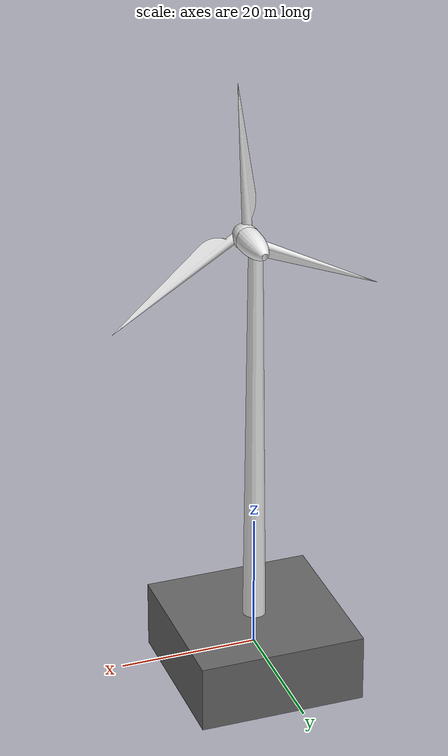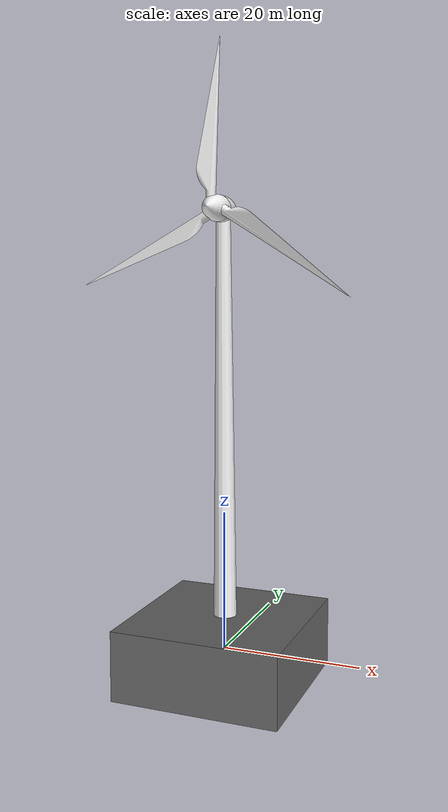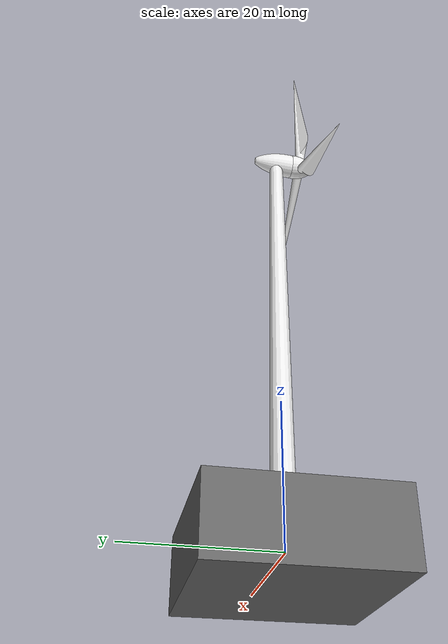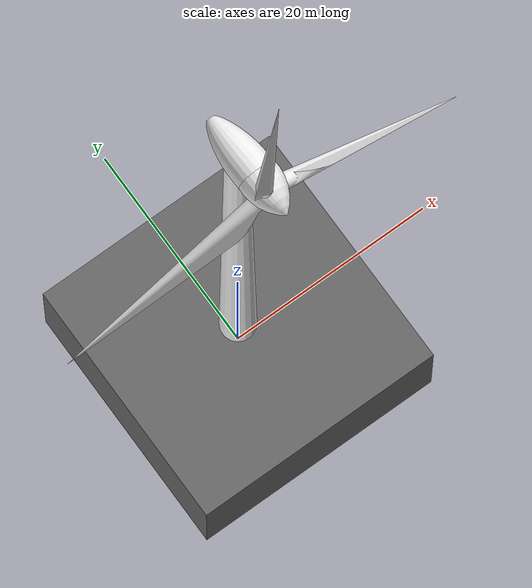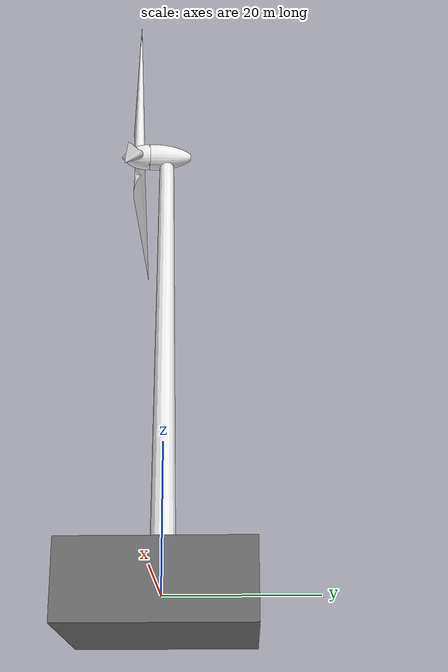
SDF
<?xml version="1.0" ?>
<sdf version="1.8">
  <model name="wind_turbine">
    <link name="turbine_base">
      <pose>0 0 28 0 0 0</pose> <!-- Base positioned at ground level -->
      <visual name="base_visual">
        <geometry>
          <mesh>
            <uri>./meshes/turbine_base.stl</uri>
            <scale>7 7 7</scale> <!-- Scaling to 35% -->
          </mesh>
        </geometry>
        <material>
          <script>
            <name>Gazebo/White</name>
            <uri>file://media/materials/scripts/gazebo.material</uri>
          </script>
        </material>
      </visual>
    </link>

    <!-- Support link (Box) to hold the turbine to the ground -->
    <link name="turbine_support">
      <pose>0 0 0 0 0 0</pose> <!-- Positioned slightly below the base -->
      <inertial>
        <inertia>
          <ixx>88.2</ixx>
          <ixy>0.0</ixy>
          <ixz>0.0</ixz>
          <iyy>88.2</iyy>
          <iyz>0.0</iyz>
          <izz>88.2</izz>
        </inertia>
        <mass>3430000</mass>
      </inertial>

      <collision name="support_collision">
        <geometry>
          <box>
            <size>24.3 24.3 10</size> <!-- Dimensions of the support box -->
          </box>
        </geometry>
        <surface>
          <friction>
            <ode>
              <mu>0.1</mu>
              <mu2>0.1</mu2>
            </ode>
          </friction>
        </surface>
      </collision>
      <visual name="support_visual">
        <geometry>
          <box>
            <size>24.3 24.3 10</size> <!-- Visual representation of the support box -->
          </box>
        </geometry>
        <material>
          <ambient>0.4 0.4 0.4 1</ambient>   <!-- Darkened ambient -->
          <diffuse>0.4 0.4 0.4 1</diffuse>   <!-- Darkened diffuse -->
          <specular>0.3 0.3 0.3 1</specular> <!-- Darkened specular -->
        </material>
      </visual>
    </link>

      <!-- Joint to connect testlink to the base -->
    <joint name="supp_joint" type="fixed">
      <parent>turbine_support</parent>
      <child>turbine_base</child>
    </joint>

    <!-- Dynamic link for the turbine tower and nacelle -->
    <link name="turbine_nacell">
      <pose>0 0 63 0 0 0</pose>

      <visual name="visual">
        <geometry>
          <mesh>
            <uri>./meshes/turbine_nacell.stl</uri>
            <scale>7 7 7</scale> <!-- Scaling to 35% -->
          </mesh>
        </geometry>
        <material>
          <script>
            <name>Gazebo/White</name>
            <uri>file://media/materials/scripts/gazebo.material</uri>
          </script>
        </material>
      </visual>
    </link>

    <!-- Joint to connect testlink to the base -->
    <joint name="base_joint" type="fixed">
      <parent>turbine_base</parent>
      <child>turbine_nacell</child>
    </joint>

     <!-- Support link (Box) to hold the turbine to the ground -->
    <link name="turbine_hub">

      <pose>0.14 -2.38 63.00 1.5708 0 0</pose> <!-- Base positioned at ground level -->
      <inertial>
        <pose>0 0 0.0 0 0 0</pose>
        <mass>9800</mass>
        <density>7800</density>
        <inertia>
          <ixx>408.77</ixx>
          <ixy>0</ixy>
          <ixz>0</ixz>
          <iyy>408.77</iyy>
          <iyz>0</iyz>
          <izz>408.77</izz>
        </inertia>
      </inertial>

      <collision name="hub_collision">
        <density>7850</density>
        <geometry>
          <mesh>
            <uri>./meshes/turbine_hub.stl</uri>
            <scale>0.0182 0.0182 0.0182</scale>
          </mesh>
        </geometry>
      </collision>

      <visual name="hub_visual">
        <geometry>
          <mesh>
            <uri>./meshes/turbine_hub.stl</uri>
            <scale>0.0182 0.0182 0.0182</scale>
          </mesh>
        </geometry>
        <material>
          <script>
            <name>Gazebo/White</name>
            <uri>file://media/materials/scripts/gazebo.material</uri>
          </script>
        </material>
      </visual>
    </link>

    <!-- Support link (Box) to hold the turbine to the ground -->
    <link name="turbine_blade">

      <pose>0.14 -4.13 63 1.5708 0 0</pose>
      <inertial>
        <pose>0 11.9 0 0 0 0</pose>
        <mass>200</mass>
        <inertia>
          <ixx>8515.71</ixx>
          <ixy>0</ixy>
          <ixz>0</ixz>
          <iyy>204.82</iyy>
          <iyz>0</iyz>
          <izz>8614.20</izz>
        </inertia>
      </inertial>

      <collision name="collision">
        <density>7850</density>
        <pose>0.0 0.0 0 0.0 0.0 0.0</pose>
        <geometry>
          <mesh>
            <uri>./meshes/turbine_blade.stl</uri>
            <scale>0.35 0.35 0.35</scale> <!-- Scaling to 35% -->
          </mesh>
        </geometry>
      </collision>

      <visual name="visual">
        <pose>0.0 0.0 0 0.0 0.0 0.0</pose>
        <geometry>
          <mesh>
            <uri>./meshes/turbine_blade.stl</uri>
            <scale>0.35 0.35 0.35</scale> <!-- Scaling to 35% -->
          </mesh>
        </geometry>
        <material>
          <script>
            <name>Gazebo/White</name>
            <uri>file://media/materials/scripts/gazebo.material</uri>
          </script>
        </material>
      </visual>
    </link>

    <joint name="blade_joint" type="fixed">
      <parent>turbine_hub</parent>
      <child>turbine_blade</child>
      <pose>0.0 0.0 0.0 0.0 0.0 0.0</pose>
    </joint>

    <link name="turbine_blade_2">

      <pose>0.14 -4.13 63 1.5708 2.0944 0</pose>
      <inertial>
        <pose>0 11.9 0 0 0 0</pose>
        <mass>200</mass>
        <inertia>
          <ixx>8515.71</ixx>
          <ixy>0</ixy>
          <ixz>0</ixz>
          <iyy>204.82</iyy>
          <iyz>0</iyz>
          <izz>8614.20</izz>
        </inertia>
      </inertial>

      <collision name="collision">
        <density>7850</density>
        <pose>0.0 0.0 0 0.0 0.0 0.0</pose>
        <geometry>
          <mesh>
            <uri>./meshes/turbine_blade.stl</uri>
            <scale>0.35 0.35 0.35</scale> <!-- Scaling to 35% -->
          </mesh>
        </geometry>
      </collision>

      <visual name="visual">
        <pose>0.0 0.0 0 0.0 0.0 0.0</pose>
        <geometry>
          <mesh>
            <uri>./meshes/turbine_blade.stl</uri>
            <scale>0.35 0.35 0.35</scale> <!-- Scaling to 35% -->
          </mesh>
        </geometry>
        <material>
          <script>
            <name>Gazebo/White</name>
            <uri>file://media/materials/scripts/gazebo.material</uri>
          </script>
        </material>
      </visual>

    </link>

  <joint name="blade_joint_2" type="fixed">
    <parent>turbine_hub</parent>
    <child>turbine_blade_2</child>
    <pose>0.0 0.0 0.0 0.0 0.0 0.0</pose>
  </joint>

  <link name="turbine_blade_3">

    <pose>0.14 -4.13 63 1.5708 4.18879 0</pose>
    <inertial>
      <pose>0 11.9 0 0 0 0</pose>
      <mass>200</mass>
      <inertia>
        <ixx>8515.71</ixx>
        <ixy>0</ixy>
        <ixz>0</ixz>
        <iyy>204.82</iyy>
        <iyz>0</iyz>
        <izz>8614.20</izz>
      </inertia>
    </inertial>

    <collision name="collision">
      <density>7850</density>
      <pose>0.0 0.0 0 0.0 0.0 0.0</pose>
      <geometry>
        <mesh>
          <uri>./meshes/turbine_blade.stl</uri>
          <scale>0.35 0.35 0.35</scale>
          </mesh>
        </geometry>
      </collision>

      <visual name="visual">
        <pose>0.0 0.0 0 0.0 0.0 0.0</pose>
        <geometry>
          <mesh>
            <uri>./meshes/turbine_blade.stl</uri>
            <scale>0.35 0.35 0.35</scale> <!-- Scaling to 35% -->
          </mesh>
        </geometry>
        <material>
          <script>
            <name>Gazebo/White</name>
            <uri>file://media/materials/scripts/gazebo.material</uri>
          </script>
        </material>
      </visual>
  </link>

  <plugin
    filename="gz-sim-lift-drag-system"
    name="gz::sim::systems::LiftDrag">
    <a0>0.1</a0> <!-- The initial "alpha" or initial angle of attack. a0 is also the y-intercept of the alpha-lift coefficient curve.-->
    <cla>0.1</cla>
    <cda>0.001</cda>
    <cma>0.0</cma>
    <cp>0.0 0.5 0</cp>
    <area>32.452</area> <!-- Updated with the calculated surface area -->
    <air_density>1.2041</air_density>
    <forward>1 0 0</forward>
    <upward>0 0 1</upward>
    <link_name>turbine_blade</link_name>
  </plugin>

  <plugin
    filename="gz-sim-lift-drag-system"
    name="gz::sim::systems::LiftDrag">
    <a0>0.1</a0>
    <cla>0.1</cla>
    <cda>0.001</cda>
    <cma>0.0</cma>
    <cp>0.0 0.5 0</cp>
    <area>32.452</area> <!-- Updated with the calculated surface area -->
    <air_density>1.2041</air_density>
    <forward>1 0 0</forward>
    <upward>0 0 1</upward>
    <link_name>turbine_blade_2</link_name>
  </plugin>

  <plugin
    filename="gz-sim-lift-drag-system"
    name="gz::sim::systems::LiftDrag">
    <a0>0.1</a0>
    <cla>0.1</cla>
    <cda>0.001</cda>
    <cma>0.0</cma>
    <cp>0.0 0.5 0</cp>
    <area>32.452</area> <!-- Updated with the calculated surface area -->
    <air_density>1.2041</air_density>
    <forward>1 0 0</forward>
    <upward>0 0 1</upward>
    <link_name>turbine_blade_3</link_name>
  </plugin>

  <joint name="blade_joint_3" type="fixed">
    <parent>turbine_hub</parent>
    <child>turbine_blade_3</child>
    <pose>0.0 0.0 0.0 0.0 0.0 0.0</pose>
  </joint>

    <!-- Revolute joint for propeller rotation -->
  <joint name="propeller_joint" type="revolute">
      <parent>turbine_nacell</parent>
      <child>turbine_hub</child>
      <pose>0.0 0.0 0.0 0.0 0.0 0.0</pose>
      <axis>
        <xyz>0.0 0.0 1.0</xyz>
        <limit>
          <lower>-1e16</lower>
          <upper>1e16</upper>
          <velocity>10.0</velocity> <!-- Set a maximum rotational velocity -->
        </limit>
        <dynamics>
          <damping>0.05</damping> <!-- Increased damping to slow down the spin -->
          <friction>0.05</friction> <!-- Add friction to further resist motion -->
        </dynamics>
      </axis>
      <physics>
        <ode>
          <cfm_damping>1</cfm_damping>
        </ode>
      </physics>
    </joint>

  </model>
</sdf>
